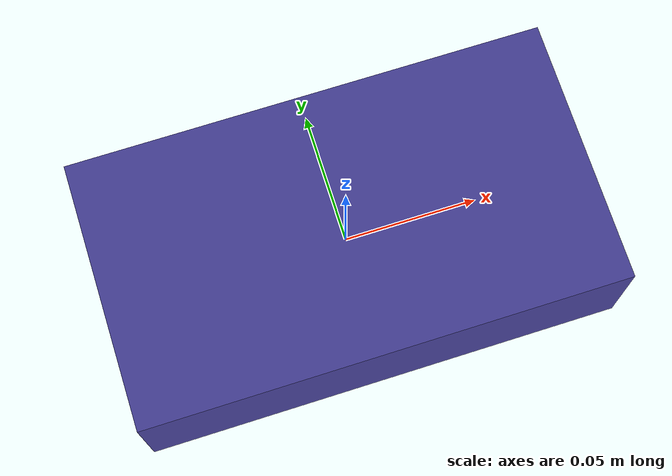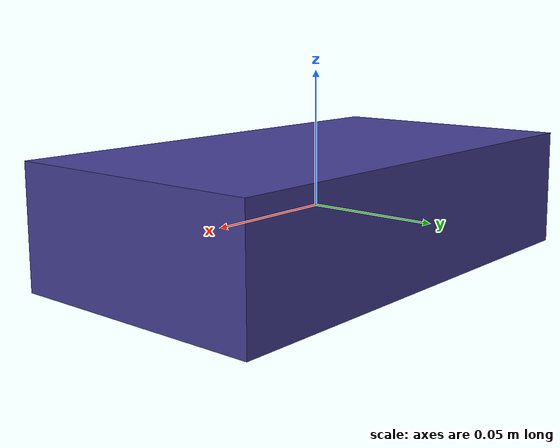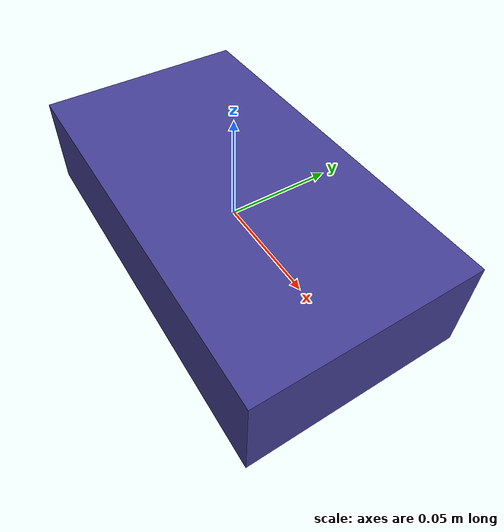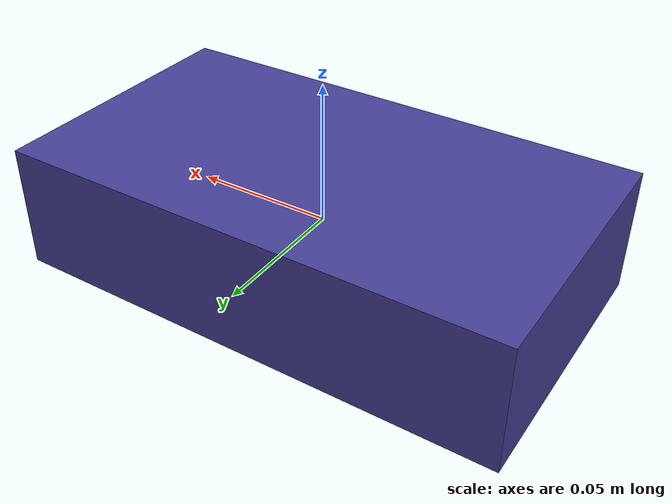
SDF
<sdf version="1.7">
  <model name="blue_berry_box_small_soft">
    <link name="base_link">
      <inertial>
        <mass>0.25</mass>
        <inertia>
          <ixx>2.505e-04</ixx>
          <ixy>0.000e+00</ixy>
          <ixz>0.000e+00</ixz>
          <iyy>7.172e-04</iyy>
          <iyz>0.000e+00</iyz>
          <izz>8.833e-04</izz>
        </inertia>
      </inertial>
      <visual name="blue_berry_box_small_soft_visual">
        <geometry>
          <box>
            <size>0.18 0.10 0.045</size>
          </box>
        </geometry>
        <material>
          <diffuse>0.27 0.25 0.59 1.0</diffuse>
        </material>
      </visual>
      <collision name="body">
        <geometry>
          <box>
            <size>0.178 0.098 0.043</size>
          </box>
        </geometry>
        <drake:proximity_properties>
          <drake:mu_dynamic>2.0</drake:mu_dynamic>
          <drake:mu_static>2.0</drake:mu_static>
          <drake:mesh_resolution_hint>0.02</drake:mesh_resolution_hint>
          <drake:elastic_modulus>1e5</drake:elastic_modulus>
          <drake:hunt_crossley_dissipation>5.0</drake:hunt_crossley_dissipation>
          <drake:soft_hydroelastic/>
        </drake:proximity_properties>
      </collision>

      <collision name="corner_0">
        <pose>-0.09 -0.05 -0.0225 0 0 0</pose>
        <geometry>
          <sphere>
            <radius>0.001</radius>
          </sphere>
        </geometry>
        <drake:proximity_properties>
          <drake:mu_dynamic>0.1</drake:mu_dynamic>
          <drake:mu_static>0.1</drake:mu_static>
          <drake:mesh_resolution_hint>0.02</drake:mesh_resolution_hint>
          <drake:elastic_modulus>1e5</drake:elastic_modulus>
          <drake:hunt_crossley_dissipation>5.0</drake:hunt_crossley_dissipation>
          <drake:soft_hydroelastic/>
        </drake:proximity_properties>
      </collision>
      <collision name="corner_2">
        <pose>-0.09 0.05 -0.0225 0 0 0</pose>
        <geometry>
          <sphere>
            <radius>0.001</radius>
          </sphere>
        </geometry>
        <drake:proximity_properties>
          <drake:mu_dynamic>0.1</drake:mu_dynamic>
          <drake:mu_static>0.1</drake:mu_static>
          <drake:mesh_resolution_hint>0.02</drake:mesh_resolution_hint>
          <drake:elastic_modulus>1e5</drake:elastic_modulus>
          <drake:hunt_crossley_dissipation>5.0</drake:hunt_crossley_dissipation>
          <drake:soft_hydroelastic/>
        </drake:proximity_properties>
      </collision>
      <collision name="corner_4">
        <pose>0.09 -0.05 -0.0225 0 0 0</pose>
        <geometry>
          <sphere>
            <radius>0.001</radius>
          </sphere>
        </geometry>
        <drake:proximity_properties>
          <drake:mu_dynamic>0.1</drake:mu_dynamic>
          <drake:mu_static>0.1</drake:mu_static>
          <drake:mesh_resolution_hint>0.02</drake:mesh_resolution_hint>
          <drake:elastic_modulus>1e5</drake:elastic_modulus>
          <drake:hunt_crossley_dissipation>5.0</drake:hunt_crossley_dissipation>
          <drake:soft_hydroelastic/>
        </drake:proximity_properties>
      </collision>
      <collision name="corner_6">
        <pose>0.09 0.05 -0.0225 0 0 0</pose>
        <geometry>
          <sphere>
            <radius>0.001</radius>
          </sphere>
        </geometry>
        <drake:proximity_properties>
          <drake:mu_dynamic>0.1</drake:mu_dynamic>
          <drake:mu_static>0.1</drake:mu_static>
          <drake:mesh_resolution_hint>0.02</drake:mesh_resolution_hint>
          <drake:elastic_modulus>1e5</drake:elastic_modulus>
          <drake:hunt_crossley_dissipation>5.0</drake:hunt_crossley_dissipation>
          <drake:soft_hydroelastic/>
        </drake:proximity_properties>
      </collision>
    </link>
  </model>
</sdf>
